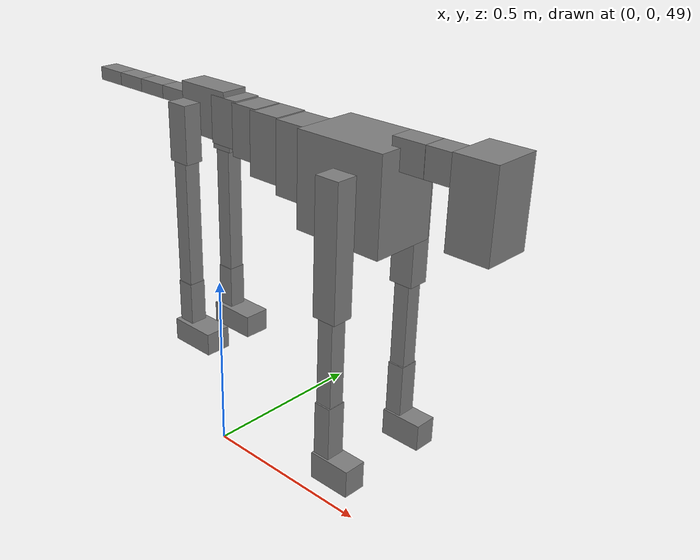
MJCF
<mujoco model="dog">

    <default>
        <joint armature="0.02" stiffness="1" damping="0.2" limited="true"/>
        <geom condim="3" friction="1 0.05 0.05" margin="0.01"/>
        <motor ctrllimited="true" ctrlrange="-1.0 1.0" forcelimited="true" gear="50"/>
    </default>

    <compiler inertiafromgeom="true" angle="radian"/>

    <option timestep="0.016" iterations="50" tolerance="1e-10" solver="Newton" jacobian="dense" cone="pyramidal"/>

    <size nconmax="20000" njmax="60000" nstack="5000000"/>
    <visual>
        <map force="0.1" zfar="30"/>
        <rgba haze="0.15 0.25 0.35 1"/>
        <quality shadowsize="2048"/>
        <global offwidth="800" offheight="800"/>
    </visual>

    <asset>
        <texture type="skybox" builtin="gradient" rgb1="0.3 0.5 0.7" rgb2="0 0 0" width="512" height="512"/>
        <texture name="texplane" type="2d" builtin="checker" rgb1=".2 .3 .4" rgb2=".1 0.15 0.2" width="512" height="512"
                 mark="cross" markrgb=".8 .8 .8"/>
        <texture name="texgeom" type="cube" builtin="flat" mark="cross" width="127" height="1278" rgb1="0.8 0.6 0.4"
                 rgb2="0.8 0.6 0.4" markrgb="1 1 1" random="0.01"/>

        <material name="matplane" reflectance="0.3" texture="texplane" texrepeat="1 1" texuniform="true"/>
        <material name="matgeom" texture="texgeom" texuniform="true" rgba="0.8 0.6 .4 1"/>
    </asset>

    <worldbody>
        <geom name="floor" pos="0 0 0" size="0 0 .25" type="plane" material="matplane" condim="3"/>

        <light directional="false" diffuse=".2 .2 .2" specular="0 0 0" pos="0 0 5" dir="0 0 -1" castshadow="false"/>
        <light mode="targetbodycom" target="torso" directional="false" diffuse=".8 .8 .8" specular="0.3 0.3 0.3"
               pos="0 0 4.0" dir="0 0 -1"/>

        <body name="root" pos="0 0 50">
            <freejoint name="root_1"/>
            <geom type="box" pos="0 0 -0.02" size="0.0774  0.0358  0.063" density="2030"/>

            <body name="spine1" pos="0.054 0 0">
                <joint name="spine1_y" axis="0 1 0" range="0 0.7" limited="true"/>
                <geom type="box" pos="0.02375 0 -0.03" size="0.04375  0.0375  0.05985" density="2030"/>

                <body name="spine2" pos="0.0612 0 0">
                    <joint name="spine2_y" axis="0 1 0" range="-0.15 0.15" limited="true"/>
                    <geom type="box" pos="0.03555  0  -0.04" size="0.04055  0.039  0.06615" density="2030"/>

                    <body name="spine3" pos="0.0730 0 0">
                        <joint name="spine3_y" axis="0 1 0" range="-0.15 0.15" limited="true"/>
                        <geom type="box" pos="0.03555  0  -0.057" size="0.04555  0.0445  0.081" density="2030"/>

                        <body name="spine4" pos="0.0780 0 0">
                            <joint name="spine4_y" axis="0 1 0" range="-0.15 0.15" limited="true"/>
                            <geom type="box" pos="0.05265  0  -0.07" size="0.05265  0.045  0.09135" density="2030"/>

                            <body name="torso" pos="0.1082 0 0">
                                <joint name="torso_y" axis="0 1 0" range="-0.15 0.15" limited="true"/>
                                <geom type="box" pos="0.11925  0  -0.085" size="0.11925  0.085  0.11745"
                                      density="2030"/>

                                <body name="neck1" pos="0.2160  0   0.0180">
                                    <joint name="neck1_y" axis="0 1 0" range="-1.2  -1" limited="true"/>
                                    <geom type="box" pos="0.0423  0  0" size="0.0423  0.03  0.036" density="2325"/>

                                    <body name="neck2" pos="0.0853  0  0">
                                        <joint name="neck2_y" axis="0 1 0" range="0.1  0" limited="true"/>
                                        <geom type="box" pos="0.0423  0  0" size="0.0423  0.03  0.036" density="2325"/>

                                        <body name="head" pos="0.0853  0  0">
                                            <joint name="head_y" axis="0 1 0" range="-0.3  -0.2" limited="true"/>
                                            <geom type="box" pos="0.0531  0  -0.055" size="0.0531  0.06  0.1044"
                                                  density="4030"/>

                                        </body>
                                    </body>
                                </body>

                                <body name="front_shoulder" pos="0.156  0   -0.0480">
                                    <joint name="front_shoulder_y" axis="0 1 0" range="-1 1.5" limited="true"/>
                                    <geom type="box" pos="0 0.13 -0.1379" size="0.0319  0.0273  0.1645" density="1158"/>
                                    <geom type="box" pos="0 -0.13 -0.1379" size="0.0319  0.0273  0.1645"
                                          density="1158"/>

                                    <body name="front_elbow" pos="0  0  -0.2758">
                                        <joint name="front_elbow_y" axis="0 1 0" range="-2 0" limited="true"/>
                                        <geom type="box" pos="0 0.13 -0.1299" size="0.0208  0.0213  0.1299"
                                              density="1081"/>
                                        <geom type="box" pos="0 -0.13 -0.1299" size="0.0208  0.0213  0.1299"
                                              density="1081"/>

                                        <body name="front_wrist" pos="0  0  -0.2597">
                                            <joint name="front_wrist_y" axis="0 1 0" range="-0.2 0" limited="true"/>
                                            <geom type="box" pos="0 0.13 -0.0698" size="0.0225  0.0249  0.0830"
                                                  density="1664"/>
                                            <geom type="box" pos="0 -0.13 -0.0698" size="0.0225  0.0249  0.0830"
                                                  density="1664"/>

                                            <body name="front_finger_end" pos="0  0  -0.1397">
                                                <joint name="front_finger_y" axis="0 1 0" range="-0.4 1"
                                                       limited="true"/>
                                                <geom type="box" pos="0.0301  0.13  -0.0203"
                                                      size="0.0552  0.0301  0.0353" density="1515"/>
                                                <geom type="box" pos="0.0301  -0.13  -0.0203"
                                                      size="0.0552  0.0301  0.0353" density="1515"/>

                                            </body>

                                        </body>
                                    </body>
                                </body>

                            </body>
                        </body>
                    </body>
                </body>
            </body>

            <body name="back_hip" pos="-0.03 0 -0.018">
                <joint name="back_hip_y" axis="0 1 0" range="-1.5 0.3" limited="true"/>
                <geom type="box" pos="0 0.07 -0.0520" size="0.0310  0.0243  0.0748" density="1154"/>
                <geom type="box" pos="0 -0.07 -0.0520" size="0.0310  0.0243  0.0748" density="1154"/>

                <body name="back_knee" pos="0  0  -0.1040">
                    <joint name="back_knee_y" axis="0 1 0" range="0 2.8" limited="true"/>
                    <geom type="box" pos="0 0.07 -0.1833" size="0.0218  0.0214  0.1988" density="1227"/>
                    <geom type="box" pos="0 -0.07 -0.1833" size="0.0218  0.0214  0.1988" density="1227"/>

                    <body name="back_ankle" pos="0  0  -0.3665">
                        <joint name="back_ankle_y" axis="0 1 0" range="-2.2 0" limited="true"/>
                        <geom type="box" pos="0 0.07 -0.0590" size="0.0231  0.0231  0.0703" density="1284"/>
                        <geom type="box" pos="0 -0.07 -0.0590" size="0.0231  0.0231  0.0703" density="1284"/>

                        <body name="back_toe_end" pos="0  0  -0.1181">
                            <joint name="back_toe_y" axis="0 1 0" range="-0.4 1" limited="true"/>
                            <geom type="box" pos="0.0357  0.07  -0.0152" size="0.0654  0.0357  0.0302" density="1515"/>
                            <geom type="box" pos="0.0357  -0.07  -0.0152" size="0.0654  0.0357  0.0302" density="1515"/>

                        </body>
                    </body>
                </body>
            </body>

            <body name="tail1" pos="-0.074 0 -0.006">
                <joint name="tail1_y" axis="0 1 0" range="-0.2 0.2" limited="true"/>
                <geom type="box" pos="-0.0536  0  0" size="0.045  0.025  0.0175" density="1587"/>

                <body name="tail2" pos="-0.09 0 0">
                    <joint name="tail2_y" axis="0 1 0" range="-0.2 0.2" limited="true"/>
                    <geom type="box" pos="-0.0536  0  0" size="0.045  0.025  0.0175" density="1587"/>

                    <body name="tail3" pos="-0.09 0 0">
                        <joint name="tail3_y" axis="0 1 0" range="-0.2 0.2" limited="true"/>
                        <geom type="box" pos="-0.0536  0  0" size="0.045  0.025  0.0175" density="1587"/>

                        <body name="tail4" pos="-0.09 0 0">
                            <joint name="tail4_y" axis="0 1 0" range="-0.2 0.2" limited="true"/>
                            <geom type="box" pos="-0.0536  0  0" size="0.045  0.025  0.0175" density="1587"/>

                        </body>
                    </body>
                </body>
            </body>
        </body>
    </worldbody>

    <actuator>
        <motor joint="spine1_y" forcerange="-150 150     "/>
        <motor joint="spine2_y" forcerange="-150 150     "/>
        <motor joint="spine3_y" forcerange="-150 150     "/>
        <motor joint="spine4_y" forcerange="-150 150     "/>
        <motor joint="torso_y" forcerange="-150 150     "/>
        <motor joint="neck1_y" forcerange="-100 100       "/>
        <motor joint="neck2_y" forcerange="-100 100       "/>
        <motor joint="head_y" forcerange="-150 150       "/>
        <motor joint="front_shoulder_y" forcerange="-129.67 152.07"/>
        <motor joint="front_elbow_y" forcerange="-153.42 101.17"/>
        <motor joint="front_wrist_y" forcerange="-83.00 116.56"/>
        <motor joint="front_finger_y" forcerange="-49.97 70.61"/>
        <motor joint="back_hip_y" forcerange="-225.97 298.40"/>
        <motor joint="back_knee_y" forcerange="-226.97 284.91"/>
        <motor joint="back_angle_y" forcerange="-143.21 126.20"/>
        <motor joint="back_toe_y" forcerange="-125.99 79.53"/>
        <motor joint="tail1_y" forcerange="-50 50     "/>
        <motor joint="tail2_y" forcerange="-50 50     "/>
        <motor joint="tail3_y" forcerange="-50 50     "/>
        <motor joint="tail4_y" forcerange="-50 50     "/>
    </actuator>
</mujoco>
